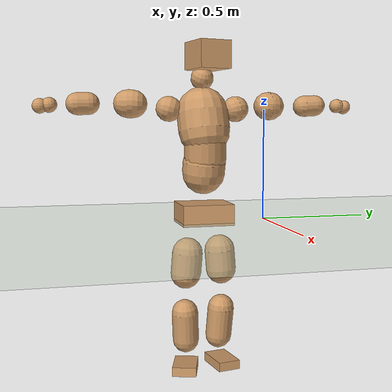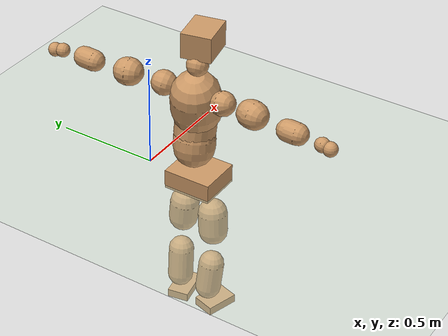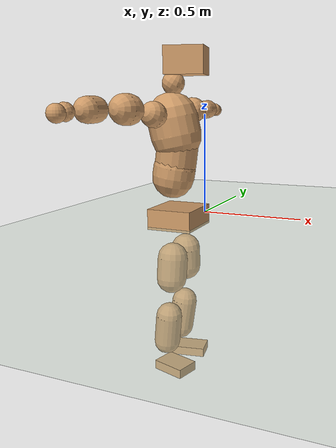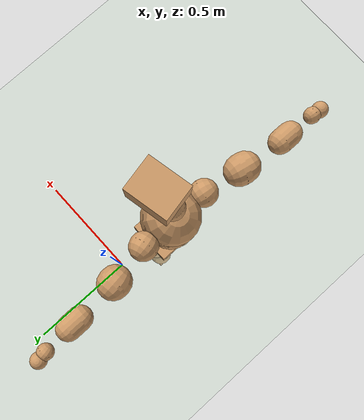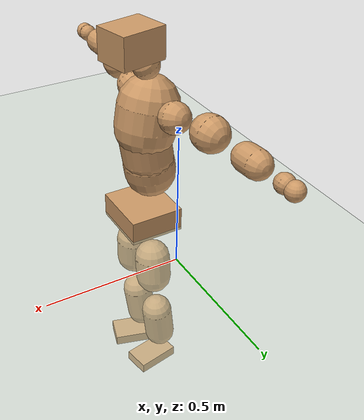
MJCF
<mujoco model="humanoid">
  <compiler coordinate="local" angle="radian"/>
  <default>
    <joint damping="0.0" armature="0.01" stiffness="0.0" limited="true"/>
    <geom conaffinity="1" condim="3" contype="7" margin="0.001" rgba="0.8 0.6 .4 1"/>
  </default>
  <asset>
    <texture type="skybox" builtin="gradient" rgb1=".4 .5 .6" rgb2="0 0 0" width="100" height="100"/>
    <texture builtin="flat" height="1278" mark="cross" markrgb="1 1 1" name="texgeom" random="0.01" rgb1="0.8 0.6 0.4" rgb2="0.8 0.6 0.4" type="cube" width="127"/>
    <texture builtin="checker" height="100" name="texplane" rgb1="0 0 0" rgb2="0.8 0.8 0.8" type="2d" width="100"/>
    <material name="MatPlane" reflectance="0.5" shininess="1" specular="1" texrepeat="60 60" texture="texplane"/>
    <material name="geom" texture="texgeom" texuniform="true"/>
  </asset>
  <worldbody>
    <light cutoff="100" diffuse="1 1 1" dir="-0 0 -1.3" directional="true" exponent="1" pos="0 0 1.3" specular=".1 .1 .1"/>
    <geom conaffinity="1" condim="3" name="floor" pos="0 0 0" rgba="0.8 0.9 0.8 1" size="100 100 .2" type="plane" material="MatPlane"/>
    <body name="Pelvis" pos="-0.0032 -0.2799 0.0413">
      <freejoint name="Pelvis"/>
      <geom type="box" contype="1" conaffinity="1" density="5359.375063" pos="-0.0112 -0.0001 -0.0077" size="0.1045 0.1168 0.0471" quat="1.0000 0.0000 0.0000 0.0027" name="Pelvis"/>
      <body name="L_Hip" pos="-0.0118 0.0664 -0.082">
        <joint name="L_Hip_x" type="hinge" pos="0 0 0" axis="1 0 0" stiffness="1600" damping="160" armature="0.02" range="-180.0000 180.0000"/>
        <joint name="L_Hip_y" type="hinge" pos="0 0 0" axis="0 1 0" stiffness="1600" damping="160" armature="0.02" range="-180.0000 180.0000"/>
        <joint name="L_Hip_z" type="hinge" pos="0 0 0" axis="0 0 1" stiffness="1600" damping="160" armature="0.02" range="-180.0000 180.0000"/>
        <geom type="capsule" contype="1" conaffinity="1" density="2040.816327" size="0.0688" fromto="-0.0009 0.0079 -0.0984 -0.0017 0.0151 -0.1888" name="L_Hip"/>
        <body name="L_Knee" pos="-0.0026 0.0229 -0.2872">
          <joint name="L_Knee_x" type="hinge" pos="0 0 0" axis="1 0 0" stiffness="1600" damping="160" armature="0.02" range="-180.0000 180.0000"/>
          <joint name="L_Knee_y" type="hinge" pos="0 0 0" axis="0 1 0" stiffness="1600" damping="160" armature="0.02" range="-180.0000 180.0000"/>
          <joint name="L_Knee_z" type="hinge" pos="0 0 0" axis="0 0 1" stiffness="1600" damping="160" armature="0.02" range="-180.0000 180.0000"/>
          <geom type="capsule" contype="1" conaffinity="1" density="1234.567901" size="0.0606" fromto="-0.0121 -0.0046 -0.0897 -0.0307 -0.0116 -0.2274" name="L_Knee"/>
          <body name="L_Ankle" pos="-0.0429 -0.0162 -0.317">
            <joint name="L_Ankle_x" type="hinge" pos="0 0 0" axis="1 0 0" stiffness="1600" damping="160" armature="0.02" range="-180.0000 180.0000"/>
            <joint name="L_Ankle_y" type="hinge" pos="0 0 0" axis="0 1 0" stiffness="1600" damping="160" armature="0.02" range="-180.0000 180.0000"/>
            <joint name="L_Ankle_z" type="hinge" pos="0 0 0" axis="0 0 1" stiffness="1600" damping="160" armature="0.02" range="-180.0000 180.0000"/>
            <geom type="box" contype="1" conaffinity="1" density="1000.000004" pos="0.0558 0.0100 -0.0241" size="0.0846 0.0515 0.0207" quat="0.9961 0.0000 0.0000 0.0883" name="L_Ankle"/>
            <body name="L_Toe" pos="0.1116 0.0199 -0.0483">
              <joint name="L_Toe_x" type="hinge" pos="0 0 0" axis="1 0 0" stiffness="1000" damping="100" armature="0.02" range="-180.0000 180.0000"/>
              <joint name="L_Toe_y" type="hinge" pos="0 0 0" axis="0 1 0" stiffness="1000" damping="100" armature="0.02" range="-180.0000 180.0000"/>
              <joint name="L_Toe_z" type="hinge" pos="0 0 0" axis="0 0 1" stiffness="1000" damping="100" armature="0.02" range="-180.0000 180.0000"/>
              <geom type="box" contype="1" conaffinity="1" density="8288396.461055" pos="0.0000 0.0000 0.0259" size="0.001 0.0025 0.0011" quat="0.9955 0.0000 0.0000 0.0953" name="L_Toe"/>
            </body>
          </body>
        </body>
      </body>
      <body name="R_Hip" pos="-0.0056 -0.0706 -0.089">
        <joint name="R_Hip_x" type="hinge" pos="0 0 0" axis="1 0 0" stiffness="1600" damping="160" armature="0.02" range="-180.0000 180.0000"/>
        <joint name="R_Hip_y" type="hinge" pos="0 0 0" axis="0 1 0" stiffness="1600" damping="160" armature="0.02" range="-180.0000 180.0000"/>
        <joint name="R_Hip_z" type="hinge" pos="0 0 0" axis="0 0 1" stiffness="1600" damping="160" armature="0.02" range="-180.0000 180.0000"/>
        <geom type="capsule" contype="1" conaffinity="1" density="2040.816327" size="0.069" fromto="-0.0036 -0.0073 -0.0987 -0.0072 -0.0146 -0.1956" name="R_Hip"/>
        <body name="R_Knee" pos="-0.0108 -0.0219 -0.2942">
          <joint name="R_Knee_x" type="hinge" pos="0 0 0" axis="1 0 0" stiffness="1600" damping="160" armature="0.02" range="-180.0000 180.0000"/>
          <joint name="R_Knee_y" type="hinge" pos="0 0 0" axis="0 1 0" stiffness="1600" damping="160" armature="0.02" range="-180.0000 180.0000"/>
          <joint name="R_Knee_z" type="hinge" pos="0 0 0" axis="0 0 1" stiffness="1600" damping="160" armature="0.02" range="-180.0000 180.0000"/>
          <geom type="capsule" contype="1" conaffinity="1" density="1234.567901" size="0.0604" fromto="-0.0110 0.0049 -0.0895 -0.0276 0.0122 -0.2241" name="R_Knee"/>
          <body name="R_Ankle" pos="-0.0386 0.0171 -0.3137">
            <joint name="R_Ankle_x" type="hinge" pos="0 0 0" axis="1 0 0" stiffness="1600" damping="160" armature="0.02" range="-180.0000 180.0000"/>
            <joint name="R_Ankle_y" type="hinge" pos="0 0 0" axis="0 1 0" stiffness="1600" damping="160" armature="0.02" range="-180.0000 180.0000"/>
            <joint name="R_Ankle_z" type="hinge" pos="0 0 0" axis="0 0 1" stiffness="1600" damping="160" armature="0.02" range="-180.0000 180.0000"/>
            <geom type="box" contype="1" conaffinity="1" density="999.999996" pos="0.0577 -0.0170 -0.0251" size="0.0789 0.0546 0.0213" quat="0.9898 0.0000 0.0000 -0.1425" name="R_Ankle"/>
            <body name="R_Toe" pos="0.1155 -0.0339 -0.0501">
              <joint name="R_Toe_x" type="hinge" pos="0 0 0" axis="1 0 0" stiffness="1000" damping="100" armature="0.02" range="-180.0000 180.0000"/>
              <joint name="R_Toe_y" type="hinge" pos="0 0 0" axis="0 1 0" stiffness="1000" damping="100" armature="0.02" range="-180.0000 180.0000"/>
              <joint name="R_Toe_z" type="hinge" pos="0 0 0" axis="0 0 1" stiffness="1000" damping="100" armature="0.02" range="-180.0000 180.0000"/>
              <geom type="box" contype="1" conaffinity="1" density="7285959.43267" pos="0.0000 0.0000 0.0265" size="0.0012 0.0027 0.0011" quat="0.9912 0.0000 0.0000 -0.1324" name="R_Toe"/>
            </body>
          </body>
        </body>
      </body>
      <body name="Torso" pos="-0.0496 0.0038 0.1249">
        <joint name="Torso_x" type="hinge" pos="0 0 0" axis="1 0 0" stiffness="2000" damping="200" armature="0.02" range="-180.0000 180.0000"/>
        <joint name="Torso_y" type="hinge" pos="0 0 0" axis="0 1 0" stiffness="2000" damping="200" armature="0.02" range="-180.0000 180.0000"/>
        <joint name="Torso_z" type="hinge" pos="0 0 0" axis="0 0 1" stiffness="2000" damping="200" armature="0.02" range="-180.0000 180.0000"/>
        <geom type="capsule" contype="1" conaffinity="1" density="2040.816327" size="0.0976" fromto="0.0162 0.0039 0.0961 0.0084 0.0020 0.0500" name="Torso"/>
        <body name="Spine" pos="0.0246 0.006 0.1461">
          <joint name="Spine_x" type="hinge" pos="0 0 0" axis="1 0 0" stiffness="2000" damping="200" armature="0.02" range="-180.0000 180.0000"/>
          <joint name="Spine_y" type="hinge" pos="0 0 0" axis="0 1 0" stiffness="2000" damping="200" armature="0.02" range="-180.0000 180.0000"/>
          <joint name="Spine_z" type="hinge" pos="0 0 0" axis="0 0 1" stiffness="2000" damping="200" armature="0.02" range="-180.0000 180.0000"/>
          <geom type="capsule" contype="1" conaffinity="1" density="2040.816327" size="0.0961" fromto="0.0142 -0.0028 0.0950 -0.0052 0.0010 -0.0351" name="Spine"/>
          <body name="Chest" pos="0.0089 -0.0018 0.0599">
            <joint name="Chest_x" type="hinge" pos="0 0 0" axis="1 0 0" stiffness="2000" damping="200" armature="0.02" range="-180.0000 180.0000"/>
            <joint name="Chest_y" type="hinge" pos="0 0 0" axis="0 1 0" stiffness="2000" damping="200" armature="0.02" range="-180.0000 180.0000"/>
            <joint name="Chest_z" type="hinge" pos="0 0 0" axis="0 0 1" stiffness="2000" damping="200" armature="0.02" range="-180.0000 180.0000"/>
            <geom type="capsule" contype="1" conaffinity="1" density="2040.816327" size="0.1165" fromto="-0.0230 -0.0076 0.1139 -0.0069 -0.0023 0.0343" name="Chest"/>
            <body name="Neck" pos="-0.0437 -0.0158 0.2199">
              <joint name="Neck_x" type="hinge" pos="0 0 0" axis="1 0 0" stiffness="1000" damping="100" armature="0.02" range="-180.0000 180.0000"/>
              <joint name="Neck_y" type="hinge" pos="0 0 0" axis="0 1 0" stiffness="1000" damping="100" armature="0.02" range="-180.0000 180.0000"/>
              <joint name="Neck_z" type="hinge" pos="0 0 0" axis="0 0 1" stiffness="1000" damping="100" armature="0.02" range="-180.0000 180.0000"/>
              <geom type="capsule" contype="1" conaffinity="1" density="1000" size="0.0509" fromto="0.0288 0.0052 0.0459 0.0299 0.0054 0.0476" name="Neck"/>
              <body name="Head" pos="0.0587 0.0105 0.0936">
                <joint name="Head_x" type="hinge" pos="0 0 0" axis="1 0 0" stiffness="1000" damping="100" armature="0.02" range="-180.0000 180.0000"/>
                <joint name="Head_y" type="hinge" pos="0 0 0" axis="0 1 0" stiffness="1000" damping="100" armature="0.02" range="-180.0000 180.0000"/>
                <joint name="Head_z" type="hinge" pos="0 0 0" axis="0 0 1" stiffness="1000" damping="100" armature="0.02" range="-180.0000 180.0000"/>
                <geom type="box" contype="1" conaffinity="1" density="2250.000207" pos="0.0303 0.0063 0.0478" size="0.0887 0.0713 0.0602" quat="0.9948 0.0000 0.0000 0.1018" name="Head"/>
              </body>
            </body>
            <body name="L_Thorax" pos="-0.0187 0.0801 0.1129">
              <joint name="L_Thorax_x" type="hinge" pos="0 0 0" axis="1 0 0" stiffness="1000" damping="100" armature="0.02" range="-180.0000 180.0000"/>
              <joint name="L_Thorax_y" type="hinge" pos="0 0 0" axis="0 1 0" stiffness="1000" damping="100" armature="0.02" range="-180.0000 180.0000"/>
              <joint name="L_Thorax_z" type="hinge" pos="0 0 0" axis="0 0 1" stiffness="1000" damping="100" armature="0.02" range="-180.0000 180.0000"/>
              <geom type="capsule" contype="1" conaffinity="1" density="1000" size="0.0587" fromto="-0.0170 0.0704 0.0184 -0.0175 0.0723 0.0188" name="L_Thorax"/>
              <body name="L_Shoulder" pos="-0.0345 0.1427 0.0372">
                <joint name="L_Shoulder_x" type="hinge" pos="0 0 0" axis="1 0 0" stiffness="1000" damping="100" armature="0.02" range="-720.0000 720.0000"/>
                <joint name="L_Shoulder_y" type="hinge" pos="0 0 0" axis="0 1 0" stiffness="1000" damping="100" armature="0.02" range="-720.0000 720.0000"/>
                <joint name="L_Shoulder_z" type="hinge" pos="0 0 0" axis="0 0 1" stiffness="1000" damping="100" armature="0.02" range="-720.0000 720.0000"/>
                <geom type="capsule" contype="1" conaffinity="1" density="1000" size="0.0646" fromto="-0.0119 0.0938 -0.0031 -0.0134 0.1062 -0.0035" name="L_Shoulder"/>
                <body name="L_Elbow" pos="-0.0253 0.2 -0.0066">
                  <joint name="L_Elbow_x" type="hinge" pos="0 0 0" axis="1 0 0" stiffness="1000" damping="100" armature="0.02" range="-720.0000 720.0000"/>
                  <joint name="L_Elbow_y" type="hinge" pos="0 0 0" axis="0 1 0" stiffness="1000" damping="100" armature="0.02" range="-720.0000 720.0000"/>
                  <joint name="L_Elbow_z" type="hinge" pos="0 0 0" axis="0 0 1" stiffness="1000" damping="100" armature="0.02" range="-720.0000 720.0000"/>
                  <geom type="capsule" contype="1" conaffinity="1" density="1000" size="0.049" fromto="-0.0005 0.0789 0.0044 -0.0009 0.1354 0.0075" name="L_Elbow"/>
                  <body name="L_Wrist" pos="-0.0015 0.2143 0.0119">
                    <joint name="L_Wrist_x" type="hinge" pos="0 0 0" axis="1 0 0" stiffness="600" damping="60" armature="0.02" range="-180.0000 180.0000"/>
                    <joint name="L_Wrist_y" type="hinge" pos="0 0 0" axis="0 1 0" stiffness="600" damping="60" armature="0.02" range="-180.0000 180.0000"/>
                    <joint name="L_Wrist_z" type="hinge" pos="0 0 0" axis="0 0 1" stiffness="600" damping="60" armature="0.02" range="-180.0000 180.0000"/>
                    <geom type="capsule" contype="1" conaffinity="1" density="1000" size="0.033" fromto="-0.0062 0.0381 -0.0052 -0.0065 0.0400 -0.0054" name="L_Wrist"/>
                    <body name="L_Hand" pos="-0.0127 0.0781 -0.0106">
                      <joint name="L_Hand_x" type="hinge" pos="0 0 0" axis="1 0 0" stiffness="600" damping="60" armature="0.02" range="-180.0000 180.0000"/>
                      <joint name="L_Hand_y" type="hinge" pos="0 0 0" axis="0 1 0" stiffness="600" damping="60" armature="0.02" range="-180.0000 180.0000"/>
                      <joint name="L_Hand_z" type="hinge" pos="0 0 0" axis="0 0 1" stiffness="600" damping="60" armature="0.02" range="-180.0000 180.0000"/>
                      <geom type="sphere" contype="1" conaffinity="1" density="1000" size="0.0330" pos="0.0000 0.0000 0.0000" name="L_Hand"/>
                    </body>
                  </body>
                </body>
              </body>
            </body>
            <body name="R_Thorax" pos="-0.0272 -0.094 0.1119">
              <joint name="R_Thorax_x" type="hinge" pos="0 0 0" axis="1 0 0" stiffness="1000" damping="100" armature="0.02" range="-180.0000 180.0000"/>
              <joint name="R_Thorax_y" type="hinge" pos="0 0 0" axis="0 1 0" stiffness="1000" damping="100" armature="0.02" range="-180.0000 180.0000"/>
              <joint name="R_Thorax_z" type="hinge" pos="0 0 0" axis="0 0 1" stiffness="1000" damping="100" armature="0.02" range="-180.0000 180.0000"/>
              <geom type="capsule" contype="1" conaffinity="1" density="1000" size="0.0574" fromto="-0.0101 -0.0635 0.0190 -0.0104 -0.0653 0.0195" name="R_Thorax"/>
              <body name="R_Shoulder" pos="-0.0206 -0.1288 0.0385">
                <joint name="R_Shoulder_x" type="hinge" pos="0 0 0" axis="1 0 0" stiffness="1000" damping="100" armature="0.02" range="-720.0000 720.0000"/>
                <joint name="R_Shoulder_y" type="hinge" pos="0 0 0" axis="0 1 0" stiffness="1000" damping="100" armature="0.02" range="-720.0000 720.0000"/>
                <joint name="R_Shoulder_z" type="hinge" pos="0 0 0" axis="0 0 1" stiffness="1000" damping="100" armature="0.02" range="-720.0000 720.0000"/>
                <geom type="capsule" contype="1" conaffinity="1" density="1000" size="0.0634" fromto="-0.0183 -0.0916 0.0023 -0.0230 -0.1151 0.0029" name="R_Shoulder"/>
                <body name="R_Elbow" pos="-0.0413 -0.2066 0.0051">
                  <joint name="R_Elbow_x" type="hinge" pos="0 0 0" axis="1 0 0" stiffness="1000" damping="100" armature="0.02" range="-720.0000 720.0000"/>
                  <joint name="R_Elbow_y" type="hinge" pos="0 0 0" axis="0 1 0" stiffness="1000" damping="100" armature="0.02" range="-720.0000 720.0000"/>
                  <joint name="R_Elbow_z" type="hinge" pos="0 0 0" axis="0 0 1" stiffness="1000" damping="100" armature="0.02" range="-720.0000 720.0000"/>
                  <geom type="capsule" contype="1" conaffinity="1" density="1000" size="0.0493" fromto="-0.0007 -0.0793 -0.0017 -0.0011 -0.1290 -0.0028" name="R_Elbow"/>
                  <body name="R_Wrist" pos="-0.0018 -0.2083 -0.0044">
                    <joint name="R_Wrist_x" type="hinge" pos="0 0 0" axis="1 0 0" stiffness="600" damping="60" armature="0.02" range="-180.0000 180.0000"/>
                    <joint name="R_Wrist_y" type="hinge" pos="0 0 0" axis="0 1 0" stiffness="600" damping="60" armature="0.02" range="-180.0000 180.0000"/>
                    <joint name="R_Wrist_z" type="hinge" pos="0 0 0" axis="0 0 1" stiffness="600" damping="60" armature="0.02" range="-180.0000 180.0000"/>
                    <geom type="capsule" contype="1" conaffinity="1" density="1000" size="0.0336" fromto="-0.0039 -0.0389 -0.0041 -0.0041 -0.0409 -0.0044" name="R_Wrist"/>
                    <body name="R_Hand" pos="-0.008 -0.0798 -0.0085">
                      <joint name="R_Hand_x" type="hinge" pos="0 0 0" axis="1 0 0" stiffness="600" damping="60" armature="0.02" range="-180.0000 180.0000"/>
                      <joint name="R_Hand_y" type="hinge" pos="0 0 0" axis="0 1 0" stiffness="600" damping="60" armature="0.02" range="-180.0000 180.0000"/>
                      <joint name="R_Hand_z" type="hinge" pos="0 0 0" axis="0 0 1" stiffness="600" damping="60" armature="0.02" range="-180.0000 180.0000"/>
                      <geom type="sphere" contype="1" conaffinity="1" density="1000" size="0.0332" pos="0.0000 0.0000 0.0000" name="R_Hand"/>
                    </body>
                  </body>
                </body>
              </body>
            </body>
          </body>
        </body>
      </body>
    </body>
  </worldbody>
  <actuator>
    <motor name="L_Hip_x" joint="L_Hip_x" gear="500"/>
    <motor name="L_Hip_y" joint="L_Hip_y" gear="500"/>
    <motor name="L_Hip_z" joint="L_Hip_z" gear="500"/>
    <motor name="L_Knee_x" joint="L_Knee_x" gear="500"/>
    <motor name="L_Knee_y" joint="L_Knee_y" gear="500"/>
    <motor name="L_Knee_z" joint="L_Knee_z" gear="500"/>
    <motor name="L_Ankle_x" joint="L_Ankle_x" gear="500"/>
    <motor name="L_Ankle_y" joint="L_Ankle_y" gear="500"/>
    <motor name="L_Ankle_z" joint="L_Ankle_z" gear="500"/>
    <motor name="L_Toe_x" joint="L_Toe_x" gear="500"/>
    <motor name="L_Toe_y" joint="L_Toe_y" gear="500"/>
    <motor name="L_Toe_z" joint="L_Toe_z" gear="500"/>
    <motor name="R_Hip_x" joint="R_Hip_x" gear="500"/>
    <motor name="R_Hip_y" joint="R_Hip_y" gear="500"/>
    <motor name="R_Hip_z" joint="R_Hip_z" gear="500"/>
    <motor name="R_Knee_x" joint="R_Knee_x" gear="500"/>
    <motor name="R_Knee_y" joint="R_Knee_y" gear="500"/>
    <motor name="R_Knee_z" joint="R_Knee_z" gear="500"/>
    <motor name="R_Ankle_x" joint="R_Ankle_x" gear="500"/>
    <motor name="R_Ankle_y" joint="R_Ankle_y" gear="500"/>
    <motor name="R_Ankle_z" joint="R_Ankle_z" gear="500"/>
    <motor name="R_Toe_x" joint="R_Toe_x" gear="500"/>
    <motor name="R_Toe_y" joint="R_Toe_y" gear="500"/>
    <motor name="R_Toe_z" joint="R_Toe_z" gear="500"/>
    <motor name="Torso_x" joint="Torso_x" gear="500"/>
    <motor name="Torso_y" joint="Torso_y" gear="500"/>
    <motor name="Torso_z" joint="Torso_z" gear="500"/>
    <motor name="Spine_x" joint="Spine_x" gear="500"/>
    <motor name="Spine_y" joint="Spine_y" gear="500"/>
    <motor name="Spine_z" joint="Spine_z" gear="500"/>
    <motor name="Chest_x" joint="Chest_x" gear="500"/>
    <motor name="Chest_y" joint="Chest_y" gear="500"/>
    <motor name="Chest_z" joint="Chest_z" gear="500"/>
    <motor name="Neck_x" joint="Neck_x" gear="500"/>
    <motor name="Neck_y" joint="Neck_y" gear="500"/>
    <motor name="Neck_z" joint="Neck_z" gear="500"/>
    <motor name="Head_x" joint="Head_x" gear="500"/>
    <motor name="Head_y" joint="Head_y" gear="500"/>
    <motor name="Head_z" joint="Head_z" gear="500"/>
    <motor name="L_Thorax_x" joint="L_Thorax_x" gear="500"/>
    <motor name="L_Thorax_y" joint="L_Thorax_y" gear="500"/>
    <motor name="L_Thorax_z" joint="L_Thorax_z" gear="500"/>
    <motor name="L_Shoulder_x" joint="L_Shoulder_x" gear="500"/>
    <motor name="L_Shoulder_y" joint="L_Shoulder_y" gear="500"/>
    <motor name="L_Shoulder_z" joint="L_Shoulder_z" gear="500"/>
    <motor name="L_Elbow_x" joint="L_Elbow_x" gear="500"/>
    <motor name="L_Elbow_y" joint="L_Elbow_y" gear="500"/>
    <motor name="L_Elbow_z" joint="L_Elbow_z" gear="500"/>
    <motor name="L_Wrist_x" joint="L_Wrist_x" gear="500"/>
    <motor name="L_Wrist_y" joint="L_Wrist_y" gear="500"/>
    <motor name="L_Wrist_z" joint="L_Wrist_z" gear="500"/>
    <motor name="L_Hand_x" joint="L_Hand_x" gear="500"/>
    <motor name="L_Hand_y" joint="L_Hand_y" gear="500"/>
    <motor name="L_Hand_z" joint="L_Hand_z" gear="500"/>
    <motor name="R_Thorax_x" joint="R_Thorax_x" gear="500"/>
    <motor name="R_Thorax_y" joint="R_Thorax_y" gear="500"/>
    <motor name="R_Thorax_z" joint="R_Thorax_z" gear="500"/>
    <motor name="R_Shoulder_x" joint="R_Shoulder_x" gear="500"/>
    <motor name="R_Shoulder_y" joint="R_Shoulder_y" gear="500"/>
    <motor name="R_Shoulder_z" joint="R_Shoulder_z" gear="500"/>
    <motor name="R_Elbow_x" joint="R_Elbow_x" gear="500"/>
    <motor name="R_Elbow_y" joint="R_Elbow_y" gear="500"/>
    <motor name="R_Elbow_z" joint="R_Elbow_z" gear="500"/>
    <motor name="R_Wrist_x" joint="R_Wrist_x" gear="500"/>
    <motor name="R_Wrist_y" joint="R_Wrist_y" gear="500"/>
    <motor name="R_Wrist_z" joint="R_Wrist_z" gear="500"/>
    <motor name="R_Hand_x" joint="R_Hand_x" gear="500"/>
    <motor name="R_Hand_y" joint="R_Hand_y" gear="500"/>
    <motor name="R_Hand_z" joint="R_Hand_z" gear="500"/>
  </actuator>
  <contact>
    <exclude body1="Torso" body2="Chest"/>
    <exclude body1="Head" body2="Chest"/>
    <exclude body1="R_Knee" body2="R_Toe"/>
    <exclude body1="R_Knee" body2="L_Ankle"/>
    <exclude body1="R_Knee" body2="L_Toe"/>
    <exclude body1="L_Knee" body2="L_Toe"/>
    <exclude body1="L_Knee" body2="R_Ankle"/>
    <exclude body1="L_Knee" body2="R_Toe"/>
    <exclude body1="L_Shoulder" body2="Chest"/>
    <exclude body1="R_Shoulder" body2="Chest"/>
  </contact>
  <sensor/>
  <size njmax="700" nconmax="700"/>
</mujoco>
